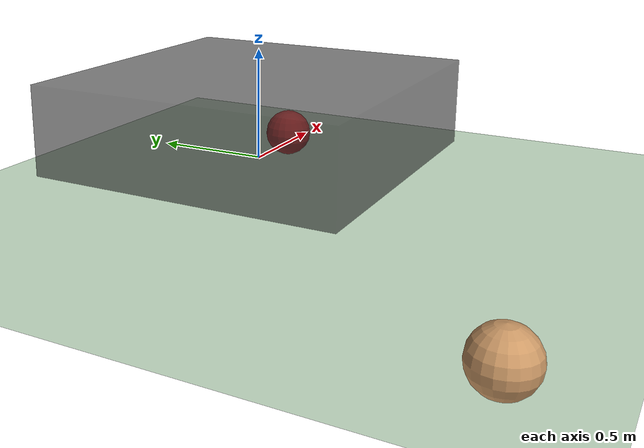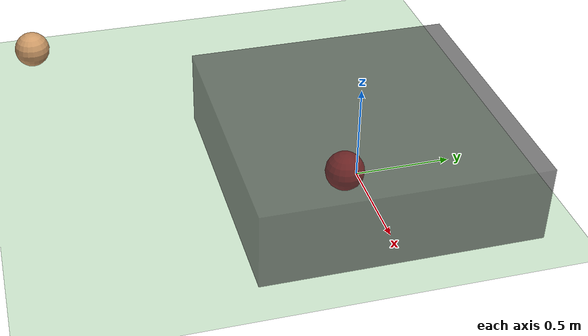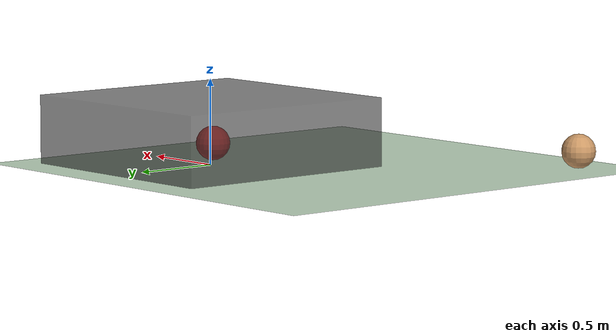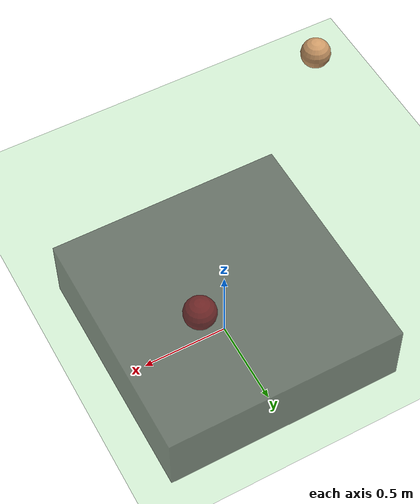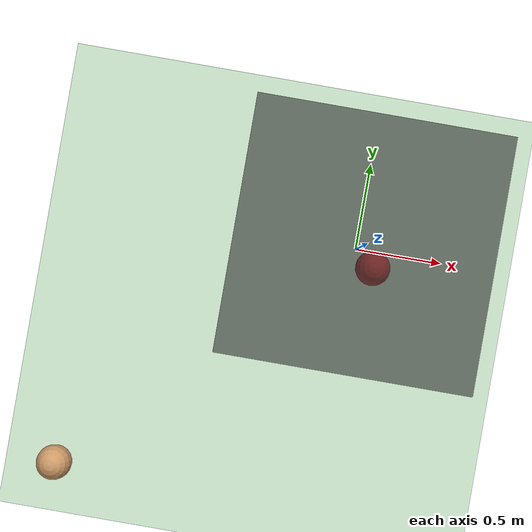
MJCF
<mujoco>
  <compiler inertiafromgeom="true" angle="degree" coordinate="local" />
  <option timestep="0.02" integrator="RK4" />
  <default>
    <joint limited="false" armature="0" damping="0" />
    <geom condim="3" conaffinity="0" margin="0" friction="1 0.5 0.5" rgba="0.8 0.6 0.4 1" density="100" />
  </default>

  <asset>
    <texture type="skybox" builtin="gradient" width="100" height="100" rgb1="1 1 1" rgb2="0 0 0" />
    <texture name="texgeom" type="cube" builtin="flat" mark="cross" width="127" height="1278" rgb1="0.8 0.6 0.4" rgb2="0.8 0.6 0.4" markrgb="1 1 1" random="0.01" />
    <texture name="texplane" type="2d" builtin="checker" rgb1="0 0 0" rgb2="0.8 0.8 0.8" width="100" height="100" />
    <material name='MatPlane' texture="texplane" shininess="1" texrepeat="30 30" specular="1"  reflectance="0.5" />
    <material name='geom' texture="texgeom" texuniform="true" />
    <material name="MatGnd" specular="0" shininess="0" reflectance="0" rgba='1 1 1 1'/>
  </asset>

  <worldbody>
    <light directional="true" cutoff="100" exponent="1" diffuse="1 1 1" specular=".1 .1 .1" pos="0 0 1.3" dir="-0 0 -1.3" />
    <!--geom name="gnd" material="MatGnd" type="plane" contype="0" conaffinity="0" pos="0 0 0" size="40 40 40"/-->
    <geom name='floor' material="MatPlane" pos='0 0 0' size='40 40 40' type='plane' conaffinity='1' rgba='0.8 0.9 0.8 1' condim='3' />
    <body name="ball" pos="-1.5 -1.5 0">
      <geom name="ball_body" type="sphere" size="0.1" pos="0 0 0.1" />
      <joint name='ballx' type='slide' axis='1 0 0' pos='0 0 0' />
      <joint name='bally' type='slide' axis='0 1 0' pos='0 0 0' />
    </body>

    <body name="maze" pos="0 0 0">
      <geom name="obstacle" type="box" size="0.7 0.7 0.2" pos="0. 0. 0.2" conaffinity='1' rgba="0.15 0.15 0.15 0.6"/>
    </body>

    <body name="target" pos=".1 -.1 .01">
      <geom conaffinity="0" contype="0" name="target" pos="0 0 0.1" rgba="0.9 0.2 0.2 0.9" size="0.1" type="sphere"/>
    </body>
  </worldbody>

  <actuator>
    <!-- Those are just dummy actuators for providing ranges -->
    <motor joint='ballx' ctrlrange="-2 2" ctrllimited="true" />
    <motor joint='bally' ctrlrange="-2 2" ctrllimited="true" />
  </actuator>

</mujoco>
